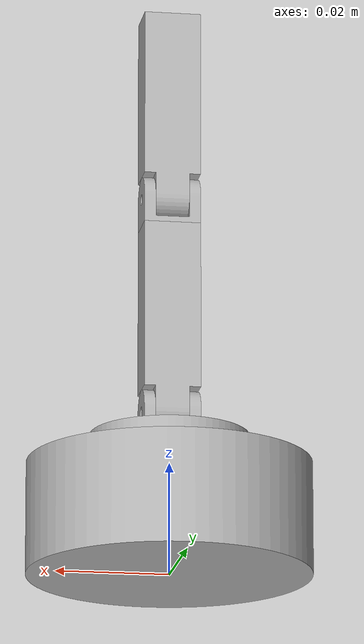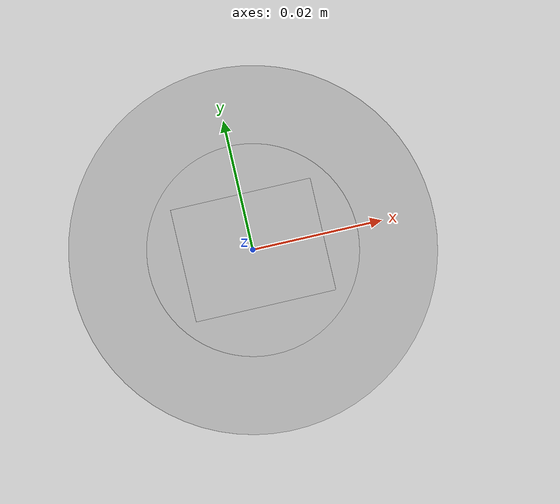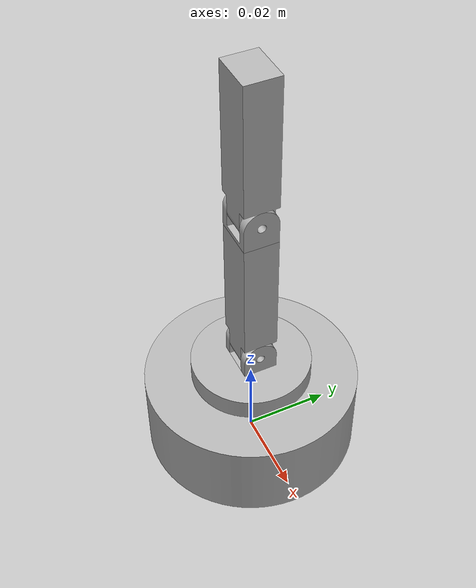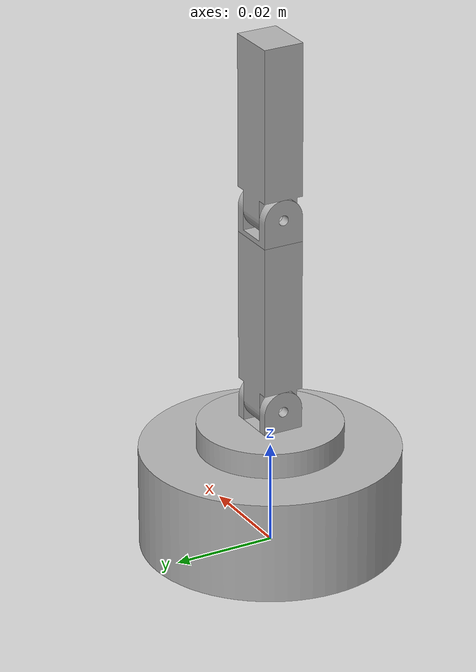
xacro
<?xml version="1.0" ?>
<robot name="rover_arms_learn_1" xmlns:xacro="http://www.ros.org/wiki/xacro">

<xacro:include filename="$(find rover_arms_learn_1_description)/urdf/materials.xacro" />
<xacro:include filename="$(find rover_arms_learn_1_description)/urdf/rover_arms_learn_1.trans" />
<xacro:include filename="$(find rover_arms_learn_1_description)/urdf/rover_arms_learn_1.gazebo" />
<link name="base_link">
  <inertial>
    <origin rpy="0 0 0" xyz="-0.009333400269692833 0.005264626329278374 0.02366823532762397"/>
    <mass value="0.2599322345653659"/>
    <inertia ixx="5.4e-05" ixy="-0.0" ixz="0.0" iyy="5.4e-05" iyz="-0.0" izz="9.2e-05"/>
  </inertial>
  <visual>
    <origin rpy="0 0 0" xyz="0 0 0"/>
    <geometry>
      <mesh filename="package://rover_arms_learn_1_description/meshes/base_link.stl" scale="0.001 0.001 0.001"/>
    </geometry>
    <material name="silver"/>
  </visual>
  <collision>
    <origin rpy="0 0 0" xyz="0 0 0"/>
    <geometry>
      <mesh filename="package://rover_arms_learn_1_description/meshes/base_link.stl" scale="0.001 0.001 0.001"/>
    </geometry>
  </collision>
</link>

<link name="z_rotor1_1">
  <inertial>
    <origin rpy="0 0 0" xyz="-4.0026969282819236e-07 -3.736707216272367e-07 0.007438866405845044"/>
    <mass value="0.07187681685219886"/>
    <inertia ixx="5e-06" ixy="-0.0" ixz="-0.0" iyy="5e-06" iyz="-0.0" izz="7e-06"/>
  </inertial>
  <visual>
    <origin rpy="0 0 0" xyz="0.009333 -0.005265 -0.024598"/>
    <geometry>
      <mesh filename="package://rover_arms_learn_1_description/meshes/z_rotor1_1.stl" scale="0.001 0.001 0.001"/>
    </geometry>
    <material name="silver"/>
  </visual>
  <collision>
    <origin rpy="0 0 0" xyz="0.009333 -0.005265 -0.024598"/>
    <geometry>
      <mesh filename="package://rover_arms_learn_1_description/meshes/z_rotor1_1.stl" scale="0.001 0.001 0.001"/>
    </geometry>
  </collision>
</link>

<link name="hinge_1">
  <inertial>
    <origin rpy="0 0 0" xyz="-4.002696928160493e-07 -3.736707216298388e-07 0.003495342113363699"/>
    <mass value="0.002323322065259032"/>
    <inertia ixx="0.0" ixy="-0.0" ixz="-0.0" iyy="0.0" iyz="0.0" izz="0.0"/>
  </inertial>
  <visual>
    <origin rpy="0 0 0" xyz="0.009333 -0.005265 -0.038598"/>
    <geometry>
      <mesh filename="package://rover_arms_learn_1_description/meshes/hinge_1.stl" scale="0.001 0.001 0.001"/>
    </geometry>
    <material name="silver"/>
  </visual>
  <collision>
    <origin rpy="0 0 0" xyz="0.009333 -0.005265 -0.038598"/>
    <geometry>
      <mesh filename="package://rover_arms_learn_1_description/meshes/hinge_1.stl" scale="0.001 0.001 0.001"/>
    </geometry>
  </collision>
</link>

<link name="arm_1">
  <inertial>
    <origin rpy="0 0 0" xyz="-4.002696928108451e-07 0.001661382812545048 0.01670498203591403"/>
    <mass value="0.02138298309788857"/>
    <inertia ixx="2e-06" ixy="-0.0" ixz="0.0" iyy="2e-06" iyz="-0.0" izz="0.0"/>
  </inertial>
  <visual>
    <origin rpy="0 0 0" xyz="0.009333 -0.005265 -0.043598"/>
    <geometry>
      <mesh filename="package://rover_arms_learn_1_description/meshes/arm_1.stl" scale="0.001 0.001 0.001"/>
    </geometry>
    <material name="silver"/>
  </visual>
  <collision>
    <origin rpy="0 0 0" xyz="0.009333 -0.005265 -0.043598"/>
    <geometry>
      <mesh filename="package://rover_arms_learn_1_description/meshes/arm_1.stl" scale="0.001 0.001 0.001"/>
    </geometry>
  </collision>
</link>

<link name="hinge_2">
  <inertial>
    <origin rpy="0 0 0" xyz="-4.002696928108451e-07 0.0003462233981555065 0.0034781875662040357"/>
    <mass value="0.002323322065259032"/>
    <inertia ixx="0.0" ixy="-0.0" ixz="-0.0" iyy="0.0" iyz="-0.0" izz="0.0"/>
  </inertial>
  <visual>
    <origin rpy="0 0 0" xyz="0.009333 -0.00863 -0.077431"/>
    <geometry>
      <mesh filename="package://rover_arms_learn_1_description/meshes/hinge_2.stl" scale="0.001 0.001 0.001"/>
    </geometry>
    <material name="silver"/>
  </visual>
  <collision>
    <origin rpy="0 0 0" xyz="0.009333 -0.00863 -0.077431"/>
    <geometry>
      <mesh filename="package://rover_arms_learn_1_description/meshes/hinge_2.stl" scale="0.001 0.001 0.001"/>
    </geometry>
  </collision>
</link>

<link name="arm_2">
  <inertial>
    <origin rpy="0 0 0" xyz="-4.0026969281431457e-07 0.011083945217883603 0.012608689088721967"/>
    <mass value="0.02138298309788857"/>
    <inertia ixx="2e-06" ixy="-0.0" ixz="0.0" iyy="1e-06" iyz="-1e-06" izz="1e-06"/>
  </inertial>
  <visual>
    <origin rpy="0 0 0" xyz="0.009333 -0.009125 -0.082406"/>
    <geometry>
      <mesh filename="package://rover_arms_learn_1_description/meshes/arm_2.stl" scale="0.001 0.001 0.001"/>
    </geometry>
    <material name="silver"/>
  </visual>
  <collision>
    <origin rpy="0 0 0" xyz="0.009333 -0.009125 -0.082406"/>
    <geometry>
      <mesh filename="package://rover_arms_learn_1_description/meshes/arm_2.stl" scale="0.001 0.001 0.001"/>
    </geometry>
  </collision>
</link>

<joint name="base_zrotor" type="revolute">
  <origin rpy="0 0 0" xyz="-0.009333 0.005265 0.024598"/>
  <parent link="base_link"/>
  <child link="z_rotor1_1"/>
  <axis xyz="-0.0 -0.0 1.0"/>
  <limit effort="100" lower="-3.141593" upper="3.141593" velocity="100"/>
</joint>

<joint name="hinge_z_rotor" type="fixed">
  <origin rpy="0 0 0" xyz="0.0 0.0 0.014"/>
  <parent link="z_rotor1_1"/>
  <child link="hinge_1"/>
</joint>

<joint name="hinge1_arm1" type="revolute">
  <origin rpy="0 0 0" xyz="0.0 0.0 0.005"/>
  <parent link="hinge_1"/>
  <child link="arm_1"/>
  <axis xyz="-1.0 0.0 -0.0"/>
  <limit effort="100" lower="-1.570796" upper="1.570796" velocity="100"/>
</joint>

<joint name="arm1-_hinge2" type="fixed">
  <origin rpy="0 0 0" xyz="0.0 0.003365 0.033833"/>
  <parent link="arm_1"/>
  <child link="hinge_2"/>
</joint>

<joint name="hinge2_arm2" type="revolute">
  <origin rpy="0 0 0" xyz="0.0 0.000495 0.004975"/>
  <parent link="hinge_2"/>
  <child link="arm_2"/>
  <axis xyz="1.0 -0.0 -0.0"/>
  <limit effort="100" lower="-1.570796" upper="1.570796" velocity="100"/>
</joint>

</robot>

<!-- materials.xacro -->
<robot name="rover_arms_learn_1" xmlns:xacro="http://www.ros.org/wiki/xacro" >

<material name="silver">
  <color rgba="0.700 0.700 0.700 1.000"/>
</material>

</robot>

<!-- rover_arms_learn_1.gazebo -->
<robot name="rover_arms_learn_1" xmlns:xacro="http://www.ros.org/wiki/xacro" >

<xacro:property name="body_color" value="Gazebo/Silver" />

<gazebo>
  <plugin filename="libgazebo_ros_control.so" name="control"/>
</gazebo>
<gazebo reference="base_link">
  <material>${body_color}</material>
  <mu1>0.2</mu1>
  <mu2>0.2</mu2>
  <selfCollide>true</selfCollide>
  <gravity>true</gravity>
</gazebo>

<gazebo reference="z_rotor1_1">
  <material>${body_color}</material>
  <mu1>0.2</mu1>
  <mu2>0.2</mu2>
  <selfCollide>true</selfCollide>
</gazebo>

<gazebo reference="hinge_1">
  <material>${body_color}</material>
  <mu1>0.2</mu1>
  <mu2>0.2</mu2>
  <selfCollide>true</selfCollide>
</gazebo>

<gazebo reference="arm_1">
  <material>${body_color}</material>
  <mu1>0.2</mu1>
  <mu2>0.2</mu2>
  <selfCollide>true</selfCollide>
</gazebo>

<gazebo reference="hinge_2">
  <material>${body_color}</material>
  <mu1>0.2</mu1>
  <mu2>0.2</mu2>
  <selfCollide>true</selfCollide>
</gazebo>

<gazebo reference="arm_2">
  <material>${body_color}</material>
  <mu1>0.2</mu1>
  <mu2>0.2</mu2>
  <selfCollide>true</selfCollide>
</gazebo>

</robot>
